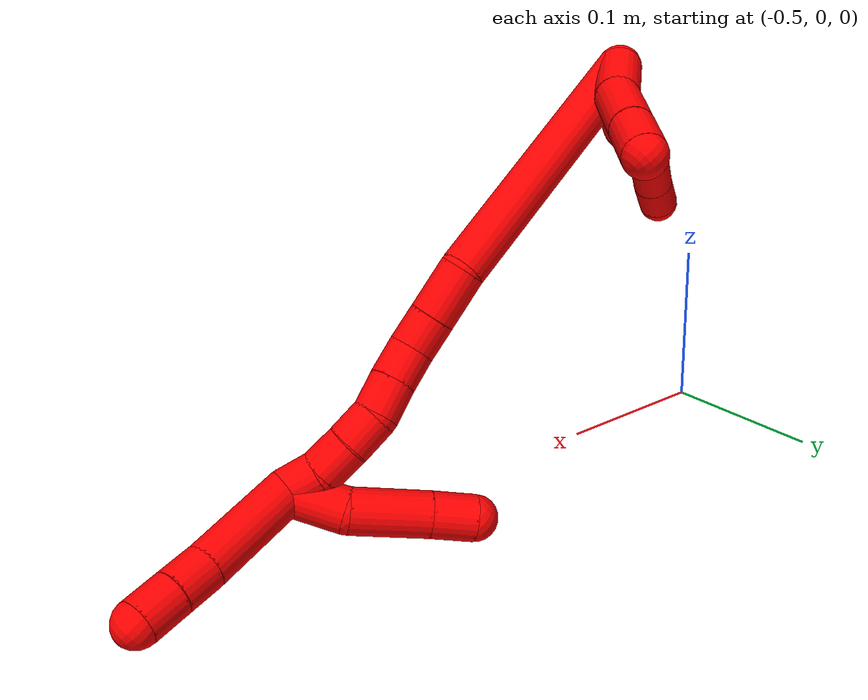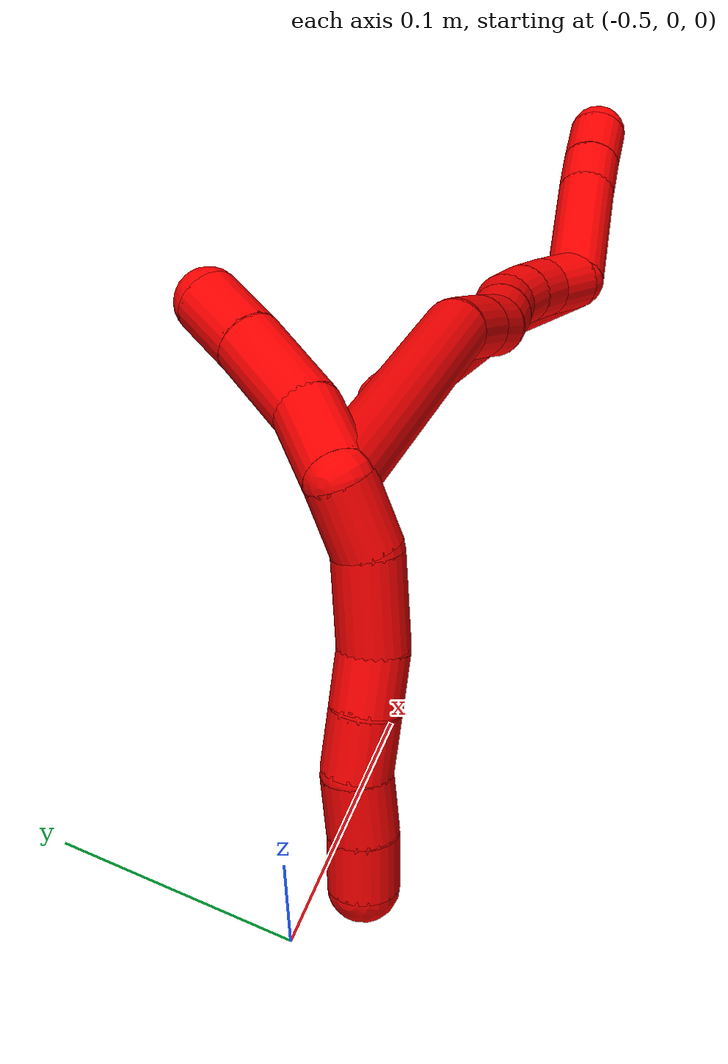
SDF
<sdf version="1.7">
 <world name="default">
  <model name="2">
   <static>0</static>
   <link name="2">
    <collision name="collision-cylinder-e_1_2_8">
     <pose>-0.013114 6e-05 -0.002338 -3.11574 -1.39432 3.11072</pose>
     <geometry><cylinder><radius>0.0125</radius><length>0.026641</length></cylinder></geometry>
     <surface>
      <friction><ode><mu>1.16</mu><mu2>1.16</mu2><slip1>0</slip1><slip2>0</slip2></ode></friction>
      <contact><ode><kp>1e+06</kp><kd>1</kd><max_vel>0</max_vel><min_depth>0.001</min_depth></ode></contact>
     </surface>
    </collision>
    <visual name="visual-cylinder-e_1_2_8">
     <pose>-0.013114 6e-05 -0.002338 -3.11574 -1.39432 3.11072</pose>
     <geometry><cylinder><radius>0.0125</radius><length>0.026641</length></cylinder></geometry>
     <material><ambient>1 0 0 1</ambient></material>
    </visual>
    <collision name="collision-cylinder-e_2_8_9">
     <pose>-0.043042 0.004627 -0.00503 -1.64935 -1.30817 1.38482</pose>
     <geometry><cylinder><radius>0.0125</radius><length>0.034823</length></cylinder></geometry>
     <surface>
      <friction><ode><mu>1.16</mu><mu2>1.16</mu2><slip1>0</slip1><slip2>0</slip2></ode></friction>
      <contact><ode><kp>1e+06</kp><kd>1</kd><max_vel>0</max_vel><min_depth>0.001</min_depth></ode></contact>
     </surface>
    </collision>
    <visual name="visual-cylinder-e_2_8_9">
     <pose>-0.043042 0.004627 -0.00503 -1.64935 -1.30817 1.38482</pose>
     <geometry><cylinder><radius>0.0125</radius><length>0.034823</length></cylinder></geometry>
     <material><ambient>1 0 0 1</ambient></material>
    </visual>
    <collision name="collision-cylinder-e_3_9_10">
     <pose>-0.069525 0.012765 -0.003252 -1.0397 -1.16001 0.717536</pose>
     <geometry><cylinder><radius>0.0125</radius><length>0.021092</length></cylinder></geometry>
     <surface>
      <friction><ode><mu>1.16</mu><mu2>1.16</mu2><slip1>0</slip1><slip2>0</slip2></ode></friction>
      <contact><ode><kp>1e+06</kp><kd>1</kd><max_vel>0</max_vel><min_depth>0.001</min_depth></ode></contact>
     </surface>
    </collision>
    <visual name="visual-cylinder-e_3_9_10">
     <pose>-0.069525 0.012765 -0.003252 -1.0397 -1.16001 0.717536</pose>
     <geometry><cylinder><radius>0.0125</radius><length>0.021092</length></cylinder></geometry>
     <material><ambient>1 0 0 1</ambient></material>
    </visual>
    <collision name="collision-cylinder-e_4_10_11">
     <pose>-0.089535 0.020829 0.000179 -1.28591 -1.15075 0.904571</pose>
     <geometry><cylinder><radius>0.0125</radius><length>0.022653</length></cylinder></geometry>
     <surface>
      <friction><ode><mu>1.16</mu><mu2>1.16</mu2><slip1>0</slip1><slip2>0</slip2></ode></friction>
      <contact><ode><kp>1e+06</kp><kd>1</kd><max_vel>0</max_vel><min_depth>0.001</min_depth></ode></contact>
     </surface>
    </collision>
    <visual name="visual-cylinder-e_4_10_11">
     <pose>-0.089535 0.020829 0.000179 -1.28591 -1.15075 0.904571</pose>
     <geometry><cylinder><radius>0.0125</radius><length>0.022653</length></cylinder></geometry>
     <material><ambient>1 0 0 1</ambient></material>
    </visual>
    <collision name="collision-cylinder-e_5_11_12">
     <pose>-0.111011 0.028245 0.000371 -1.92583 -1.29245 1.65143</pose>
     <geometry><cylinder><radius>0.0125</radius><length>0.023159</length></cylinder></geometry>
     <surface>
      <friction><ode><mu>1.16</mu><mu2>1.16</mu2><slip1>0</slip1><slip2>0</slip2></ode></friction>
      <contact><ode><kp>1e+06</kp><kd>1</kd><max_vel>0</max_vel><min_depth>0.001</min_depth></ode></contact>
     </surface>
    </collision>
    <visual name="visual-cylinder-e_5_11_12">
     <pose>-0.111011 0.028245 0.000371 -1.92583 -1.29245 1.65143</pose>
     <geometry><cylinder><radius>0.0125</radius><length>0.023159</length></cylinder></geometry>
     <material><ambient>1 0 0 1</ambient></material>
    </visual>
    <collision name="collision-cylinder-e_6_12_6">
     <pose>-0.132298 0.034881 -0.001485 -1.77337 -1.21881 1.4159</pose>
     <geometry><cylinder><radius>0.0125</radius><length>0.021632</length></cylinder></geometry>
     <surface>
      <friction><ode><mu>1.16</mu><mu2>1.16</mu2><slip1>0</slip1><slip2>0</slip2></ode></friction>
      <contact><ode><kp>1e+06</kp><kd>1</kd><max_vel>0</max_vel><min_depth>0.001</min_depth></ode></contact>
     </surface>
    </collision>
    <visual name="visual-cylinder-e_6_12_6">
     <pose>-0.132298 0.034881 -0.001485 -1.77337 -1.21881 1.4159</pose>
     <geometry><cylinder><radius>0.0125</radius><length>0.021632</length></cylinder></geometry>
     <material><ambient>1 0 0 1</ambient></material>
    </visual>
    <collision name="collision-cylinder-e_1_2_13">
     <pose>0.009935 0.009013 -0.010507 -2.43259 0.622499 -1.43101</pose>
     <geometry><cylinder><radius>0.0125</radius><length>0.034078</length></cylinder></geometry>
     <surface>
      <friction><ode><mu>1.16</mu><mu2>1.16</mu2><slip1>0</slip1><slip2>0</slip2></ode></friction>
      <contact><ode><kp>1e+06</kp><kd>1</kd><max_vel>0</max_vel><min_depth>0.001</min_depth></ode></contact>
     </surface>
    </collision>
    <visual name="visual-cylinder-e_1_2_13">
     <pose>0.009935 0.009013 -0.010507 -2.43259 0.622499 -1.43101</pose>
     <geometry><cylinder><radius>0.0125</radius><length>0.034078</length></cylinder></geometry>
     <material><ambient>1 0 0 1</ambient></material>
    </visual>
    <collision name="collision-cylinder-e_2_13_14">
     <pose>0.032051 0.030718 -0.028974 -2.13094 0.682659 -1.1416</pose>
     <geometry><cylinder><radius>0.0125</radius><length>0.038619</length></cylinder></geometry>
     <surface>
      <friction><ode><mu>1.16</mu><mu2>1.16</mu2><slip1>0</slip1><slip2>0</slip2></ode></friction>
      <contact><ode><kp>1e+06</kp><kd>1</kd><max_vel>0</max_vel><min_depth>0.001</min_depth></ode></contact>
     </surface>
    </collision>
    <visual name="visual-cylinder-e_2_13_14">
     <pose>0.032051 0.030718 -0.028974 -2.13094 0.682659 -1.1416</pose>
     <geometry><cylinder><radius>0.0125</radius><length>0.038619</length></cylinder></geometry>
     <material><ambient>1 0 0 1</ambient></material>
    </visual>
    <collision name="collision-cylinder-e_3_14_5">
     <pose>0.0522 0.052928 -0.042618 -2.10917 0.623191 -1.03238</pose>
     <geometry><cylinder><radius>0.0125</radius><length>0.027303</length></cylinder></geometry>
     <surface>
      <friction><ode><mu>1.16</mu><mu2>1.16</mu2><slip1>0</slip1><slip2>0</slip2></ode></friction>
      <contact><ode><kp>1e+06</kp><kd>1</kd><max_vel>0</max_vel><min_depth>0.001</min_depth></ode></contact>
     </surface>
    </collision>
    <visual name="visual-cylinder-e_3_14_5">
     <pose>0.0522 0.052928 -0.042618 -2.10917 0.623191 -1.03238</pose>
     <geometry><cylinder><radius>0.0125</radius><length>0.027303</length></cylinder></geometry>
     <material><ambient>1 0 0 1</ambient></material>
    </visual>
    <collision name="collision-cylinder-e_1_2_15">
     <pose>0.009231 0.012827 -0.073593 -2.96902 0.122947 -1.23691</pose>
     <geometry><cylinder><radius>0.0125</radius><length>0.150542</length></cylinder></geometry>
     <surface>
      <friction><ode><mu>1.16</mu><mu2>1.16</mu2><slip1>0</slip1><slip2>0</slip2></ode></friction>
      <contact><ode><kp>1e+06</kp><kd>1</kd><max_vel>0</max_vel><min_depth>0.001</min_depth></ode></contact>
     </surface>
    </collision>
    <visual name="visual-cylinder-e_1_2_15">
     <pose>0.009231 0.012827 -0.073593 -2.96902 0.122947 -1.23691</pose>
     <geometry><cylinder><radius>0.0125</radius><length>0.150542</length></cylinder></geometry>
     <material><ambient>1 0 0 1</ambient></material>
    </visual>
    <collision name="collision-cylinder-e_2_15_16">
     <pose>0.016208 0.028297 -0.161375 -2.95753 -0.15492 1.39846</pose>
     <geometry><cylinder><radius>0.0125</radius><length>0.029216</length></cylinder></geometry>
     <surface>
      <friction><ode><mu>1.16</mu><mu2>1.16</mu2><slip1>0</slip1><slip2>0</slip2></ode></friction>
      <contact><ode><kp>1e+06</kp><kd>1</kd><max_vel>0</max_vel><min_depth>0.001</min_depth></ode></contact>
     </surface>
    </collision>
    <visual name="visual-cylinder-e_2_15_16">
     <pose>0.016208 0.028297 -0.161375 -2.95753 -0.15492 1.39846</pose>
     <geometry><cylinder><radius>0.0125</radius><length>0.029216</length></cylinder></geometry>
     <material><ambient>1 0 0 1</ambient></material>
    </visual>
    <collision name="collision-cylinder-e_3_16_17">
     <pose>0.012176 0.032645 -0.185333 -2.96863 -0.177464 1.59665</pose>
     <geometry><cylinder><radius>0.0125</radius><length>0.020148</length></cylinder></geometry>
     <surface>
      <friction><ode><mu>1.16</mu><mu2>1.16</mu2><slip1>0</slip1><slip2>0</slip2></ode></friction>
      <contact><ode><kp>1e+06</kp><kd>1</kd><max_vel>0</max_vel><min_depth>0.001</min_depth></ode></contact>
     </surface>
    </collision>
    <visual name="visual-cylinder-e_3_16_17">
     <pose>0.012176 0.032645 -0.185333 -2.96863 -0.177464 1.59665</pose>
     <geometry><cylinder><radius>0.0125</radius><length>0.020148</length></cylinder></geometry>
     <material><ambient>1 0 0 1</ambient></material>
    </visual>
    <collision name="collision-cylinder-e_4_17_18">
     <pose>0.01112 0.037233 -0.204658 -2.8487 0.072274 -0.480727</pose>
     <geometry><cylinder><radius>0.0125</radius><length>0.020017</length></cylinder></geometry>
     <surface>
      <friction><ode><mu>1.16</mu><mu2>1.16</mu2><slip1>0</slip1><slip2>0</slip2></ode></friction>
      <contact><ode><kp>1e+06</kp><kd>1</kd><max_vel>0</max_vel><min_depth>0.001</min_depth></ode></contact>
     </surface>
    </collision>
    <visual name="visual-cylinder-e_4_17_18">
     <pose>0.01112 0.037233 -0.204658 -2.8487 0.072274 -0.480727</pose>
     <geometry><cylinder><radius>0.0125</radius><length>0.020017</length></cylinder></geometry>
     <material><ambient>1 0 0 1</ambient></material>
    </visual>
    <collision name="collision-cylinder-e_5_18_19">
     <pose>0.012472 0.043507 -0.223613 -2.79525 0.062961 -0.356236</pose>
     <geometry><cylinder><radius>0.0125</radius><length>0.020022</length></cylinder></geometry>
     <surface>
      <friction><ode><mu>1.16</mu><mu2>1.16</mu2><slip1>0</slip1><slip2>0</slip2></ode></friction>
      <contact><ode><kp>1e+06</kp><kd>1</kd><max_vel>0</max_vel><min_depth>0.001</min_depth></ode></contact>
     </surface>
    </collision>
    <visual name="visual-cylinder-e_5_18_19">
     <pose>0.012472 0.043507 -0.223613 -2.79525 0.062961 -0.356236</pose>
     <geometry><cylinder><radius>0.0125</radius><length>0.020022</length></cylinder></geometry>
     <material><ambient>1 0 0 1</ambient></material>
    </visual>
    <collision name="collision-cylinder-e_6_19_20">
     <pose>0.012938 0.047301 -0.243004 -3.10132 -0.016452 0.775536</pose>
     <geometry><cylinder><radius>0.0125</radius><length>0.020004</length></cylinder></geometry>
     <surface>
      <friction><ode><mu>1.16</mu><mu2>1.16</mu2><slip1>0</slip1><slip2>0</slip2></ode></friction>
      <contact><ode><kp>1e+06</kp><kd>1</kd><max_vel>0</max_vel><min_depth>0.001</min_depth></ode></contact>
     </surface>
    </collision>
    <visual name="visual-cylinder-e_6_19_20">
     <pose>0.012938 0.047301 -0.243004 -3.10132 -0.016452 0.775536</pose>
     <geometry><cylinder><radius>0.0125</radius><length>0.020004</length></cylinder></geometry>
     <material><ambient>1 0 0 1</ambient></material>
    </visual>
    <collision name="collision-cylinder-e_7_20_21">
     <pose>0.011967 0.047459 -0.262965 3.11704 -0.080708 -2.55126</pose>
     <geometry><cylinder><radius>0.0125</radius><length>0.020008</length></cylinder></geometry>
     <surface>
      <friction><ode><mu>1.16</mu><mu2>1.16</mu2><slip1>0</slip1><slip2>0</slip2></ode></friction>
      <contact><ode><kp>1e+06</kp><kd>1</kd><max_vel>0</max_vel><min_depth>0.001</min_depth></ode></contact>
     </surface>
    </collision>
    <visual name="visual-cylinder-e_7_20_21">
     <pose>0.011967 0.047459 -0.262965 3.11704 -0.080708 -2.55126</pose>
     <geometry><cylinder><radius>0.0125</radius><length>0.020008</length></cylinder></geometry>
     <material><ambient>1 0 0 1</ambient></material>
    </visual>
    <collision name="collision-cylinder-e_8_21_1">
     <pose>0.010118 0.044232 -0.282443 2.83765 -0.104154 -0.656099</pose>
     <geometry><cylinder><radius>0.0125</radius><length>0.020043</length></cylinder></geometry>
     <surface>
      <friction><ode><mu>1.16</mu><mu2>1.16</mu2><slip1>0</slip1><slip2>0</slip2></ode></friction>
      <contact><ode><kp>1e+06</kp><kd>1</kd><max_vel>0</max_vel><min_depth>0.001</min_depth></ode></contact>
     </surface>
    </collision>
    <visual name="visual-cylinder-e_8_21_1">
     <pose>0.010118 0.044232 -0.282443 2.83765 -0.104154 -0.656099</pose>
     <geometry><cylinder><radius>0.0125</radius><length>0.020043</length></cylinder></geometry>
     <material><ambient>1 0 0 1</ambient></material>
    </visual>
    <collision name="collision-cylinder-e_1_1_22">
     <pose>0.024869 0.044644 -0.316489 -3.00408 0.567605 -2.6779</pose>
     <geometry><cylinder><radius>0.0125</radius><length>0.058751</length></cylinder></geometry>
     <surface>
      <friction><ode><mu>1.16</mu><mu2>1.16</mu2><slip1>0</slip1><slip2>0</slip2></ode></friction>
      <contact><ode><kp>1e+06</kp><kd>1</kd><max_vel>0</max_vel><min_depth>0.001</min_depth></ode></contact>
     </surface>
    </collision>
    <visual name="visual-cylinder-e_1_1_22">
     <pose>0.024869 0.044644 -0.316489 -3.00408 0.567605 -2.6779</pose>
     <geometry><cylinder><radius>0.0125</radius><length>0.058751</length></cylinder></geometry>
     <material><ambient>1 0 0 1</ambient></material>
    </visual>
    <collision name="collision-cylinder-e_2_22_23">
     <pose>0.04635 0.048688 -0.349295 -3.06329 0.601022 -2.89013</pose>
     <geometry><cylinder><radius>0.0125</radius><length>0.020118</length></cylinder></geometry>
     <surface>
      <friction><ode><mu>1.16</mu><mu2>1.16</mu2><slip1>0</slip1><slip2>0</slip2></ode></friction>
      <contact><ode><kp>1e+06</kp><kd>1</kd><max_vel>0</max_vel><min_depth>0.001</min_depth></ode></contact>
     </surface>
    </collision>
    <visual name="visual-cylinder-e_2_22_23">
     <pose>0.04635 0.048688 -0.349295 -3.06329 0.601022 -2.89013</pose>
     <geometry><cylinder><radius>0.0125</radius><length>0.020118</length></cylinder></geometry>
     <material><ambient>1 0 0 1</ambient></material>
    </visual>
    <collision name="collision-cylinder-e_3_23_4">
     <pose>0.057645 0.049958 -0.366499 -3.07216 0.559415 -2.90093</pose>
     <geometry><cylinder><radius>0.0125</radius><length>0.021131</length></cylinder></geometry>
     <surface>
      <friction><ode><mu>1.16</mu><mu2>1.16</mu2><slip1>0</slip1><slip2>0</slip2></ode></friction>
      <contact><ode><kp>1e+06</kp><kd>1</kd><max_vel>0</max_vel><min_depth>0.001</min_depth></ode></contact>
     </surface>
    </collision>
    <visual name="visual-cylinder-e_3_23_4">
     <pose>0.057645 0.049958 -0.366499 -3.07216 0.559415 -2.90093</pose>
     <geometry><cylinder><radius>0.0125</radius><length>0.021131</length></cylinder></geometry>
     <material><ambient>1 0 0 1</ambient></material>
    </visual>
    <collision name="collision-cylinder-e_1_1_24">
     <pose>0.006826 0.05571 -0.284564 -1.0984 -0.137702 0.084358</pose>
     <geometry><cylinder><radius>0.0125</radius><length>0.032791</length></cylinder></geometry>
     <surface>
      <friction><ode><mu>1.16</mu><mu2>1.16</mu2><slip1>0</slip1><slip2>0</slip2></ode></friction>
      <contact><ode><kp>1e+06</kp><kd>1</kd><max_vel>0</max_vel><min_depth>0.001</min_depth></ode></contact>
     </surface>
    </collision>
    <visual name="visual-cylinder-e_1_1_24">
     <pose>0.006826 0.05571 -0.284564 -1.0984 -0.137702 0.084358</pose>
     <geometry><cylinder><radius>0.0125</radius><length>0.032791</length></cylinder></geometry>
     <material><ambient>1 0 0 1</ambient></material>
    </visual>
    <collision name="collision-cylinder-e_2_24_25">
     <pose>-0.00277 0.084885 -0.26317 -0.810071 -0.346988 0.149997</pose>
     <geometry><cylinder><radius>0.0125</radius><length>0.0432</length></cylinder></geometry>
     <surface>
      <friction><ode><mu>1.16</mu><mu2>1.16</mu2><slip1>0</slip1><slip2>0</slip2></ode></friction>
      <contact><ode><kp>1e+06</kp><kd>1</kd><max_vel>0</max_vel><min_depth>0.001</min_depth></ode></contact>
     </surface>
    </collision>
    <visual name="visual-cylinder-e_2_24_25">
     <pose>-0.00277 0.084885 -0.26317 -0.810071 -0.346988 0.149997</pose>
     <geometry><cylinder><radius>0.0125</radius><length>0.0432</length></cylinder></geometry>
     <material><ambient>1 0 0 1</ambient></material>
    </visual>
    <collision name="collision-cylinder-e_3_25_3">
     <pose>-0.013967 0.108115 -0.241633 -0.846622 -0.326643 0.148219</pose>
     <geometry><cylinder><radius>0.0125</radius><length>0.024009</length></cylinder></geometry>
     <surface>
      <friction><ode><mu>1.16</mu><mu2>1.16</mu2><slip1>0</slip1><slip2>0</slip2></ode></friction>
      <contact><ode><kp>1e+06</kp><kd>1</kd><max_vel>0</max_vel><min_depth>0.001</min_depth></ode></contact>
     </surface>
    </collision>
    <visual name="visual-cylinder-e_3_25_3">
     <pose>-0.013967 0.108115 -0.241633 -0.846622 -0.326643 0.148219</pose>
     <geometry><cylinder><radius>0.0125</radius><length>0.024009</length></cylinder></geometry>
     <material><ambient>1 0 0 1</ambient></material>
    </visual>
    <collision name="collision-sphere-3">
     <pose>-0.017819 0.116631 -0.2341 0 -0 0</pose>
     <geometry><sphere><radius>0.0125</radius></sphere></geometry>
     <surface>
      <friction><ode><mu>1.16</mu><mu2>1.16</mu2><slip1>0</slip1><slip2>0</slip2></ode></friction>
      <contact><ode><kp>1e+06</kp><kd>1</kd><max_vel>0</max_vel><min_depth>0.001</min_depth></ode></contact>
     </surface>
    </collision>
    <visual name="visual-sphere-3">
     <pose>-0.017819 0.116631 -0.2341 0 -0 0</pose>
     <geometry><sphere><radius>0.0125</radius></sphere></geometry>
     <material><ambient>1 0 0 1</ambient></material>
    </visual>
    <collision name="collision-sphere-25">
     <pose>-0.010115 0.099598 -0.249165 0 -0 0</pose>
     <geometry><sphere><radius>0.0125</radius></sphere></geometry>
     <surface>
      <friction><ode><mu>1.16</mu><mu2>1.16</mu2><slip1>0</slip1><slip2>0</slip2></ode></friction>
      <contact><ode><kp>1e+06</kp><kd>1</kd><max_vel>0</max_vel><min_depth>0.001</min_depth></ode></contact>
     </surface>
    </collision>
    <visual name="visual-sphere-25">
     <pose>-0.010115 0.099598 -0.249165 0 -0 0</pose>
     <geometry><sphere><radius>0.0125</radius></sphere></geometry>
     <material><ambient>1 0 0 1</ambient></material>
    </visual>
    <collision name="collision-sphere-24">
     <pose>0.004575 0.070172 -0.277174 0 -0 0</pose>
     <geometry><sphere><radius>0.0125</radius></sphere></geometry>
     <surface>
      <friction><ode><mu>1.16</mu><mu2>1.16</mu2><slip1>0</slip1><slip2>0</slip2></ode></friction>
      <contact><ode><kp>1e+06</kp><kd>1</kd><max_vel>0</max_vel><min_depth>0.001</min_depth></ode></contact>
     </surface>
    </collision>
    <visual name="visual-sphere-24">
     <pose>0.004575 0.070172 -0.277174 0 -0 0</pose>
     <geometry><sphere><radius>0.0125</radius></sphere></geometry>
     <material><ambient>1 0 0 1</ambient></material>
    </visual>
    <collision name="collision-sphere-4">
     <pose>0.063252 0.050579 -0.375433 0 -0 0</pose>
     <geometry><sphere><radius>0.0125</radius></sphere></geometry>
     <surface>
      <friction><ode><mu>1.16</mu><mu2>1.16</mu2><slip1>0</slip1><slip2>0</slip2></ode></friction>
      <contact><ode><kp>1e+06</kp><kd>1</kd><max_vel>0</max_vel><min_depth>0.001</min_depth></ode></contact>
     </surface>
    </collision>
    <visual name="visual-sphere-4">
     <pose>0.063252 0.050579 -0.375433 0 -0 0</pose>
     <geometry><sphere><radius>0.0125</radius></sphere></geometry>
     <material><ambient>1 0 0 1</ambient></material>
    </visual>
    <collision name="collision-sphere-23">
     <pose>0.052038 0.049337 -0.357566 0 -0 0</pose>
     <geometry><sphere><radius>0.0125</radius></sphere></geometry>
     <surface>
      <friction><ode><mu>1.16</mu><mu2>1.16</mu2><slip1>0</slip1><slip2>0</slip2></ode></friction>
      <contact><ode><kp>1e+06</kp><kd>1</kd><max_vel>0</max_vel><min_depth>0.001</min_depth></ode></contact>
     </surface>
    </collision>
    <visual name="visual-sphere-23">
     <pose>0.052038 0.049337 -0.357566 0 -0 0</pose>
     <geometry><sphere><radius>0.0125</radius></sphere></geometry>
     <material><ambient>1 0 0 1</ambient></material>
    </visual>
    <collision name="collision-sphere-22">
     <pose>0.040662 0.048039 -0.341024 0 -0 0</pose>
     <geometry><sphere><radius>0.0125</radius></sphere></geometry>
     <surface>
      <friction><ode><mu>1.16</mu><mu2>1.16</mu2><slip1>0</slip1><slip2>0</slip2></ode></friction>
      <contact><ode><kp>1e+06</kp><kd>1</kd><max_vel>0</max_vel><min_depth>0.001</min_depth></ode></contact>
     </surface>
    </collision>
    <visual name="visual-sphere-22">
     <pose>0.040662 0.048039 -0.341024 0 -0 0</pose>
     <geometry><sphere><radius>0.0125</radius></sphere></geometry>
     <material><ambient>1 0 0 1</ambient></material>
    </visual>
    <collision name="collision-sphere-1">
     <pose>0.009076 0.041249 -0.291954 0 -0 0</pose>
     <geometry><sphere><radius>0.0125</radius></sphere></geometry>
     <surface>
      <friction><ode><mu>1.16</mu><mu2>1.16</mu2><slip1>0</slip1><slip2>0</slip2></ode></friction>
      <contact><ode><kp>1e+06</kp><kd>1</kd><max_vel>0</max_vel><min_depth>0.001</min_depth></ode></contact>
     </surface>
    </collision>
    <visual name="visual-sphere-1">
     <pose>0.009076 0.041249 -0.291954 0 -0 0</pose>
     <geometry><sphere><radius>0.0125</radius></sphere></geometry>
     <material><ambient>1 0 0 1</ambient></material>
    </visual>
    <collision name="collision-sphere-21">
     <pose>0.01116 0.047214 -0.272933 0 -0 0</pose>
     <geometry><sphere><radius>0.0125</radius></sphere></geometry>
     <surface>
      <friction><ode><mu>1.16</mu><mu2>1.16</mu2><slip1>0</slip1><slip2>0</slip2></ode></friction>
      <contact><ode><kp>1e+06</kp><kd>1</kd><max_vel>0</max_vel><min_depth>0.001</min_depth></ode></contact>
     </surface>
    </collision>
    <visual name="visual-sphere-21">
     <pose>0.01116 0.047214 -0.272933 0 -0 0</pose>
     <geometry><sphere><radius>0.0125</radius></sphere></geometry>
     <material><ambient>1 0 0 1</ambient></material>
    </visual>
    <collision name="collision-sphere-12">
     <pose>-0.122145 0.031228 -0.000735 0 -0 0</pose>
     <geometry><sphere><radius>0.0125</radius></sphere></geometry>
     <surface>
      <friction><ode><mu>1.16</mu><mu2>1.16</mu2><slip1>0</slip1><slip2>0</slip2></ode></friction>
      <contact><ode><kp>1e+06</kp><kd>1</kd><max_vel>0</max_vel><min_depth>0.001</min_depth></ode></contact>
     </surface>
    </collision>
    <visual name="visual-sphere-12">
     <pose>-0.122145 0.031228 -0.000735 0 -0 0</pose>
     <geometry><sphere><radius>0.0125</radius></sphere></geometry>
     <material><ambient>1 0 0 1</ambient></material>
    </visual>
    <collision name="collision-sphere-11">
     <pose>-0.099877 0.025262 0.001477 0 -0 0</pose>
     <geometry><sphere><radius>0.0125</radius></sphere></geometry>
     <surface>
      <friction><ode><mu>1.16</mu><mu2>1.16</mu2><slip1>0</slip1><slip2>0</slip2></ode></friction>
      <contact><ode><kp>1e+06</kp><kd>1</kd><max_vel>0</max_vel><min_depth>0.001</min_depth></ode></contact>
     </surface>
    </collision>
    <visual name="visual-sphere-11">
     <pose>-0.099877 0.025262 0.001477 0 -0 0</pose>
     <geometry><sphere><radius>0.0125</radius></sphere></geometry>
     <material><ambient>1 0 0 1</ambient></material>
    </visual>
    <collision name="collision-sphere-10">
     <pose>-0.079193 0.016396 -0.001119 0 -0 0</pose>
     <geometry><sphere><radius>0.0125</radius></sphere></geometry>
     <surface>
      <friction><ode><mu>1.16</mu><mu2>1.16</mu2><slip1>0</slip1><slip2>0</slip2></ode></friction>
      <contact><ode><kp>1e+06</kp><kd>1</kd><max_vel>0</max_vel><min_depth>0.001</min_depth></ode></contact>
     </surface>
    </collision>
    <visual name="visual-sphere-10">
     <pose>-0.079193 0.016396 -0.001119 0 -0 0</pose>
     <geometry><sphere><radius>0.0125</radius></sphere></geometry>
     <material><ambient>1 0 0 1</ambient></material>
    </visual>
    <collision name="collision-sphere-9">
     <pose>-0.059856 0.009134 -0.005385 0 -0 0</pose>
     <geometry><sphere><radius>0.0125</radius></sphere></geometry>
     <surface>
      <friction><ode><mu>1.16</mu><mu2>1.16</mu2><slip1>0</slip1><slip2>0</slip2></ode></friction>
      <contact><ode><kp>1e+06</kp><kd>1</kd><max_vel>0</max_vel><min_depth>0.001</min_depth></ode></contact>
     </surface>
    </collision>
    <visual name="visual-sphere-9">
     <pose>-0.059856 0.009134 -0.005385 0 -0 0</pose>
     <geometry><sphere><radius>0.0125</radius></sphere></geometry>
     <material><ambient>1 0 0 1</ambient></material>
    </visual>
    <collision name="collision-sphere-2">
     <geometry><sphere><radius>0.0125</radius></sphere></geometry>
     <surface>
      <friction><ode><mu>1.16</mu><mu2>1.16</mu2><slip1>0</slip1><slip2>0</slip2></ode></friction>
      <contact><ode><kp>1e+06</kp><kd>1</kd><max_vel>0</max_vel><min_depth>0.001</min_depth></ode></contact>
     </surface>
    </collision>
    <visual name="visual-sphere-2">
     <geometry><sphere><radius>0.0125</radius></sphere></geometry>
     <material><ambient>1 0 0 1</ambient></material>
    </visual>
    <collision name="collision-sphere-19">
     <pose>0.013102 0.046899 -0.233011 0 -0 0</pose>
     <geometry><sphere><radius>0.0125</radius></sphere></geometry>
     <surface>
      <friction><ode><mu>1.16</mu><mu2>1.16</mu2><slip1>0</slip1><slip2>0</slip2></ode></friction>
      <contact><ode><kp>1e+06</kp><kd>1</kd><max_vel>0</max_vel><min_depth>0.001</min_depth></ode></contact>
     </surface>
    </collision>
    <visual name="visual-sphere-19">
     <pose>0.013102 0.046899 -0.233011 0 -0 0</pose>
     <geometry><sphere><radius>0.0125</radius></sphere></geometry>
     <material><ambient>1 0 0 1</ambient></material>
    </visual>
    <collision name="collision-sphere-8">
     <pose>-0.026227 0.000121 -0.004676 0 -0 0</pose>
     <geometry><sphere><radius>0.0125</radius></sphere></geometry>
     <surface>
      <friction><ode><mu>1.16</mu><mu2>1.16</mu2><slip1>0</slip1><slip2>0</slip2></ode></friction>
      <contact><ode><kp>1e+06</kp><kd>1</kd><max_vel>0</max_vel><min_depth>0.001</min_depth></ode></contact>
     </surface>
    </collision>
    <visual name="visual-sphere-8">
     <pose>-0.026227 0.000121 -0.004676 0 -0 0</pose>
     <geometry><sphere><radius>0.0125</radius></sphere></geometry>
     <material><ambient>1 0 0 1</ambient></material>
    </visual>
    <collision name="collision-sphere-6">
     <pose>-0.142451 0.038534 -0.002235 0 -0 0</pose>
     <geometry><sphere><radius>0.0125</radius></sphere></geometry>
     <surface>
      <friction><ode><mu>1.16</mu><mu2>1.16</mu2><slip1>0</slip1><slip2>0</slip2></ode></friction>
      <contact><ode><kp>1e+06</kp><kd>1</kd><max_vel>0</max_vel><min_depth>0.001</min_depth></ode></contact>
     </surface>
    </collision>
    <visual name="visual-sphere-6">
     <pose>-0.142451 0.038534 -0.002235 0 -0 0</pose>
     <geometry><sphere><radius>0.0125</radius></sphere></geometry>
     <material><ambient>1 0 0 1</ambient></material>
    </visual>
    <collision name="collision-sphere-13">
     <pose>0.01987 0.018025 -0.021014 0 -0 0</pose>
     <geometry><sphere><radius>0.0125</radius></sphere></geometry>
     <surface>
      <friction><ode><mu>1.16</mu><mu2>1.16</mu2><slip1>0</slip1><slip2>0</slip2></ode></friction>
      <contact><ode><kp>1e+06</kp><kd>1</kd><max_vel>0</max_vel><min_depth>0.001</min_depth></ode></contact>
     </surface>
    </collision>
    <visual name="visual-sphere-13">
     <pose>0.01987 0.018025 -0.021014 0 -0 0</pose>
     <geometry><sphere><radius>0.0125</radius></sphere></geometry>
     <material><ambient>1 0 0 1</ambient></material>
    </visual>
    <collision name="collision-sphere-14">
     <pose>0.044233 0.043411 -0.036934 0 -0 0</pose>
     <geometry><sphere><radius>0.0125</radius></sphere></geometry>
     <surface>
      <friction><ode><mu>1.16</mu><mu2>1.16</mu2><slip1>0</slip1><slip2>0</slip2></ode></friction>
      <contact><ode><kp>1e+06</kp><kd>1</kd><max_vel>0</max_vel><min_depth>0.001</min_depth></ode></contact>
     </surface>
    </collision>
    <visual name="visual-sphere-14">
     <pose>0.044233 0.043411 -0.036934 0 -0 0</pose>
     <geometry><sphere><radius>0.0125</radius></sphere></geometry>
     <material><ambient>1 0 0 1</ambient></material>
    </visual>
    <collision name="collision-sphere-5">
     <pose>0.060168 0.062445 -0.048302 0 -0 0</pose>
     <geometry><sphere><radius>0.0125</radius></sphere></geometry>
     <surface>
      <friction><ode><mu>1.16</mu><mu2>1.16</mu2><slip1>0</slip1><slip2>0</slip2></ode></friction>
      <contact><ode><kp>1e+06</kp><kd>1</kd><max_vel>0</max_vel><min_depth>0.001</min_depth></ode></contact>
     </surface>
    </collision>
    <visual name="visual-sphere-5">
     <pose>0.060168 0.062445 -0.048302 0 -0 0</pose>
     <geometry><sphere><radius>0.0125</radius></sphere></geometry>
     <material><ambient>1 0 0 1</ambient></material>
    </visual>
    <collision name="collision-sphere-15">
     <pose>0.018462 0.025655 -0.147186 0 -0 0</pose>
     <geometry><sphere><radius>0.0125</radius></sphere></geometry>
     <surface>
      <friction><ode><mu>1.16</mu><mu2>1.16</mu2><slip1>0</slip1><slip2>0</slip2></ode></friction>
      <contact><ode><kp>1e+06</kp><kd>1</kd><max_vel>0</max_vel><min_depth>0.001</min_depth></ode></contact>
     </surface>
    </collision>
    <visual name="visual-sphere-15">
     <pose>0.018462 0.025655 -0.147186 0 -0 0</pose>
     <geometry><sphere><radius>0.0125</radius></sphere></geometry>
     <material><ambient>1 0 0 1</ambient></material>
    </visual>
    <collision name="collision-sphere-16">
     <pose>0.013954 0.030938 -0.175565 0 -0 0</pose>
     <geometry><sphere><radius>0.0125</radius></sphere></geometry>
     <surface>
      <friction><ode><mu>1.16</mu><mu2>1.16</mu2><slip1>0</slip1><slip2>0</slip2></ode></friction>
      <contact><ode><kp>1e+06</kp><kd>1</kd><max_vel>0</max_vel><min_depth>0.001</min_depth></ode></contact>
     </surface>
    </collision>
    <visual name="visual-sphere-16">
     <pose>0.013954 0.030938 -0.175565 0 -0 0</pose>
     <geometry><sphere><radius>0.0125</radius></sphere></geometry>
     <material><ambient>1 0 0 1</ambient></material>
    </visual>
    <collision name="collision-sphere-17">
     <pose>0.010397 0.034351 -0.195101 0 -0 0</pose>
     <geometry><sphere><radius>0.0125</radius></sphere></geometry>
     <surface>
      <friction><ode><mu>1.16</mu><mu2>1.16</mu2><slip1>0</slip1><slip2>0</slip2></ode></friction>
      <contact><ode><kp>1e+06</kp><kd>1</kd><max_vel>0</max_vel><min_depth>0.001</min_depth></ode></contact>
     </surface>
    </collision>
    <visual name="visual-sphere-17">
     <pose>0.010397 0.034351 -0.195101 0 -0 0</pose>
     <geometry><sphere><radius>0.0125</radius></sphere></geometry>
     <material><ambient>1 0 0 1</ambient></material>
    </visual>
    <collision name="collision-sphere-18">
     <pose>0.011843 0.040115 -0.214215 0 -0 0</pose>
     <geometry><sphere><radius>0.0125</radius></sphere></geometry>
     <surface>
      <friction><ode><mu>1.16</mu><mu2>1.16</mu2><slip1>0</slip1><slip2>0</slip2></ode></friction>
      <contact><ode><kp>1e+06</kp><kd>1</kd><max_vel>0</max_vel><min_depth>0.001</min_depth></ode></contact>
     </surface>
    </collision>
    <visual name="visual-sphere-18">
     <pose>0.011843 0.040115 -0.214215 0 -0 0</pose>
     <geometry><sphere><radius>0.0125</radius></sphere></geometry>
     <material><ambient>1 0 0 1</ambient></material>
    </visual>
    <collision name="collision-sphere-20">
     <pose>0.012773 0.047704 -0.252997 0 -0 0</pose>
     <geometry><sphere><radius>0.0125</radius></sphere></geometry>
     <surface>
      <friction><ode><mu>1.16</mu><mu2>1.16</mu2><slip1>0</slip1><slip2>0</slip2></ode></friction>
      <contact><ode><kp>1e+06</kp><kd>1</kd><max_vel>0</max_vel><min_depth>0.001</min_depth></ode></contact>
     </surface>
    </collision>
    <visual name="visual-sphere-20">
     <pose>0.012773 0.047704 -0.252997 0 -0 0</pose>
     <geometry><sphere><radius>0.0125</radius></sphere></geometry>
     <material><ambient>1 0 0 1</ambient></material>
    </visual>
    <inertial>
     <pose>-0.001482 0.034417 -0.142291 0 -0 0</pose>
     <mass>0.75</mass>
     <inertia>
      <ixx>-0.000186</ixx>
      <ixy>0</ixy>
      <ixz>0</ixz>
      <iyy>-0.000309</iyy>
      <iyz>0</iyz>
      <izz>-0.000142</izz>
     </inertia>
    </inertial>
   </link>
   <pose>-0.41116 0.017494 0.232067 -0.723795 -0.616934 0.759698</pose>
  </model>
 </world>
</sdf>
